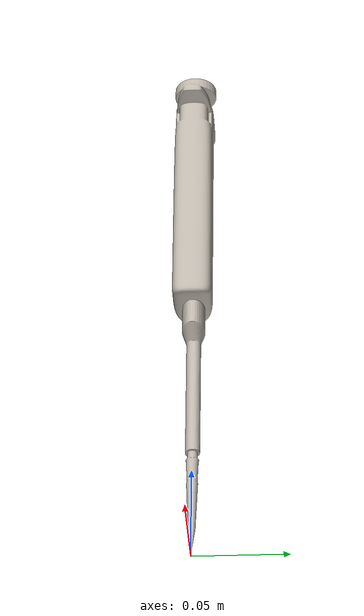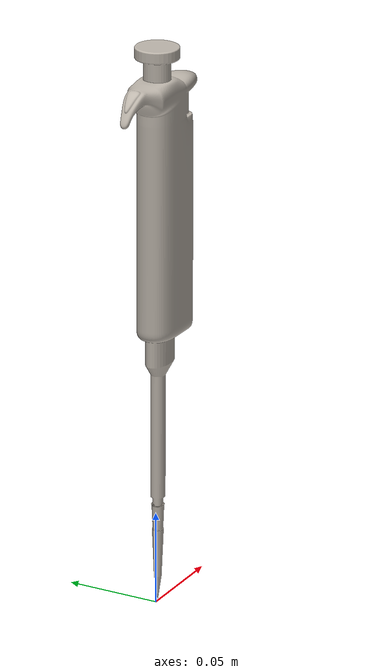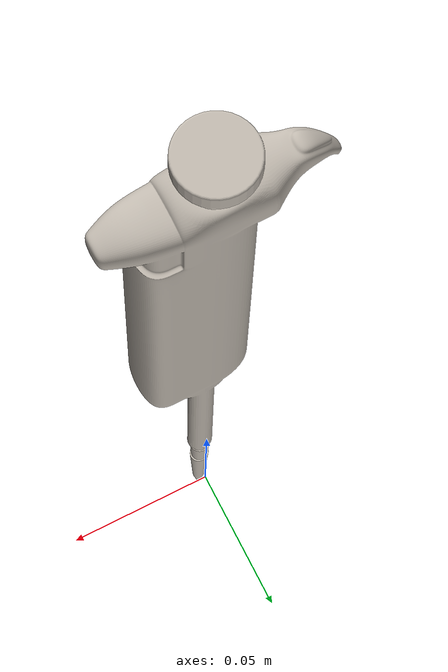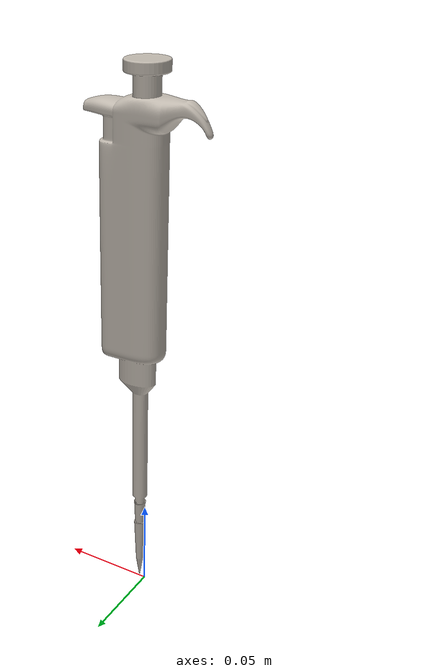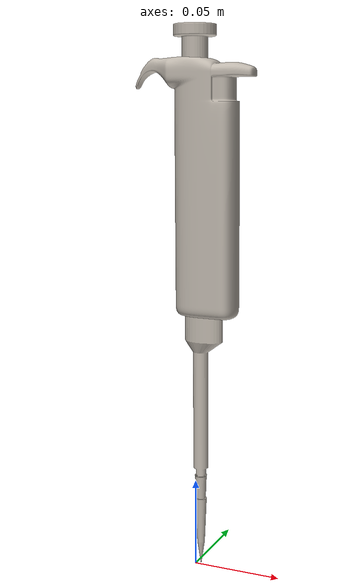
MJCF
<?xml version="1.0" ?>
<mujoco model="mechanical_pipette">
  <asset>
    <texture type="2d" name="material_0" file="material_0.png"/>
    <material name="material_0" texture="material_0" specular="0.4000000000000001" shininess="0.001"/>
    <mesh file="mechanical_pipette/mechanical_pipette.obj" scale="0.12680323391866805 0.12680323391866805 0.12680323391866805"/>
    <mesh file="mechanical_pipette/mechanical_pipette_collision_0.obj" scale="0.12680323391866805 0.12680323391866805 0.12680323391866805"/>
    <mesh file="mechanical_pipette/mechanical_pipette_collision_1.obj" scale="0.12680323391866805 0.12680323391866805 0.12680323391866805"/>
    <mesh file="mechanical_pipette/mechanical_pipette_collision_2.obj" scale="0.12680323391866805 0.12680323391866805 0.12680323391866805"/>
    <mesh file="mechanical_pipette/mechanical_pipette_collision_3.obj" scale="0.12680323391866805 0.12680323391866805 0.12680323391866805"/>
    <mesh file="mechanical_pipette/mechanical_pipette_collision_4.obj" scale="0.12680323391866805 0.12680323391866805 0.12680323391866805"/>
  </asset>
  <worldbody>
    <body name="mechanical_pipette">
      <inertial pos="0 0 0.150000" mass="0.02" diaginertia="0.0008 0.0008 0.0005"/>
      <geom material="material_0" mesh="mechanical_pipette" class="visual"/>
      <geom mesh="mechanical_pipette_collision_0" rgba="0.5514440352782967 0.8019378894641084 0.45353524484712193 1" class="collision"/>
      <geom mesh="mechanical_pipette_collision_1" rgba="0.37450243437884934 0.8963966441388045 0.42382734785683285 1" class="collision"/>
      <geom mesh="mechanical_pipette_collision_2" rgba="0.516683640636528 0.7462771742995817 0.047734481345511615 1" class="collision"/>
      <geom mesh="mechanical_pipette_collision_3" rgba="0.35699263620682575 0.9573767931242798 0.48057343019049215 1" class="collision"/>
      <geom mesh="mechanical_pipette_collision_4" rgba="0.2688968632408294 0.0954081228201129 0.9523968307323812 1" class="collision"/>
      <site class="grasppoint" pos="0.0000 0.0000 0.1800"/>
      <site class="grasppoint" pos="0.0000 0.0000 0.2400"/>
      <site class="grasppoint" pos="0.0000 0.0000 0.2850"/>
        <site name="top_site" pos="0 0 0.1" size="0.01" rgba="1 0 0 0"/>
    <site name="bottom_site" pos="0 0 0.0" size="0.01" rgba="0 1 0 0"/>
</body>
  </worldbody>
  <compiler boundmass="0.015" boundinertia="1e-03" angle="radian"/>
  <default>
    <default class="visual">
      <geom group="2" type="mesh" contype="0" conaffinity="0" density="50"/>
    </default>
    <default class="collision">
      <geom group="3" type="mesh" density="50" friction="1.5 0.1 0.1" solimp="0.9 0.95 0.001" solref="0.02 1"/>
    </default>
    <default class="grasppoint">
      <site type="sphere" size="0.005" group="4" rgba="0 0 1 1"/>
    </default>
  </default>
</mujoco>
